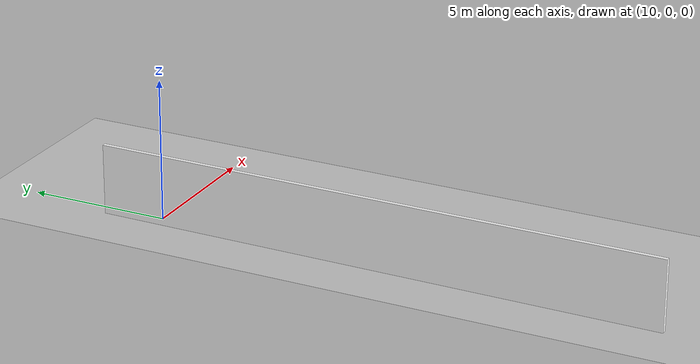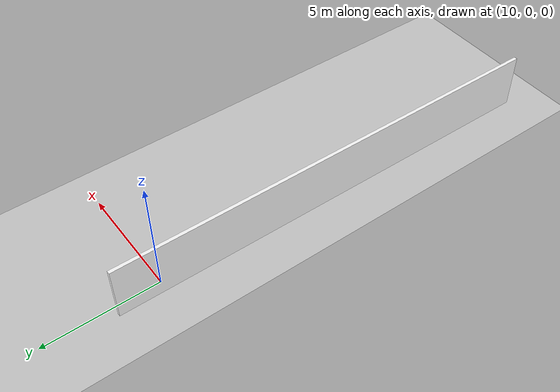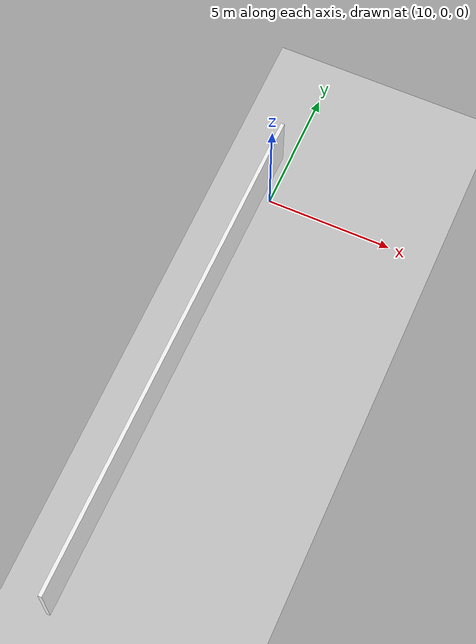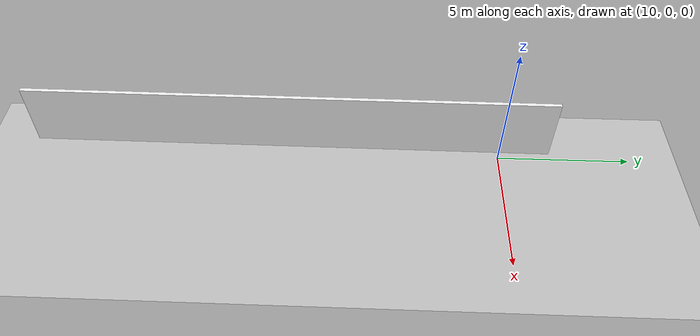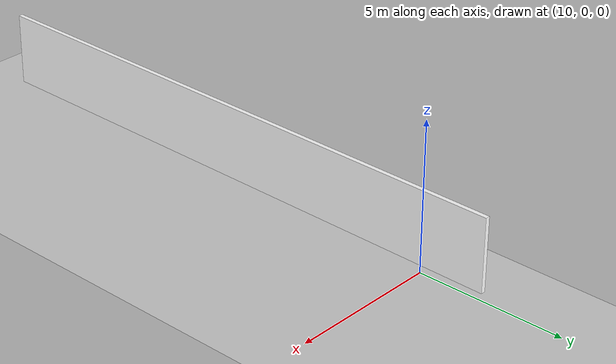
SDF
<sdf version="1.6">
 <world name="default">
  <model name="ground_plane">
   <static>1</static>
   <link name="link">
    <collision name="collision">
     <geometry><plane><normal>0 0 1</normal><size>5000 5000</size></plane></geometry>
     <surface><friction><ode><mu>1</mu><mu2>2</mu2></ode></friction></surface>
    </collision>
    <visual name="runway">
     <cast_shadows>0</cast_shadows>
     <geometry><plane><normal>0 0 1</normal><size>700 700</size></plane></geometry>
     <material>
      <script><uri>file://media/materials/scripts/gazebo.material</uri><name>Gazebo/Gray</name></script>
     </material>
    </visual>
   </link>
  </model>
  <model name="wall_with_door_0">
   <link name="Wall_2">
    <inertial>
     <inertia><ixx>0</ixx><ixy>0</ixy><ixz>0</ixz><iyy>0</iyy><iyz>0</iyz><izz>0</izz></inertia>
     <mass>0</mass>
    </inertial>
    <visual name="Wall_2_Visual_4">
     <pose>2.1425 0 1.25 0 -0 0</pose>
     <geometry><box><size>20.0858 0.15 2.5</size></box></geometry>
     <material>
      <script>
       <uri>model://floor/materials/scripts</uri>
       <uri>model://floor/materials/textures</uri>
       <name>floor</name>
      </script>
      <ambient>1 1 1 1</ambient>
      <shader type="vertex"><normal_map>__default__</normal_map></shader>
     </material>
     <meta><layer>0</layer></meta>
    </visual>
    <collision name="Wall_2_Collision_8">
     <pose>45.239 0 1.25 0 -0 0</pose>
     <geometry><box><size>0.462241 0.15 2.5</size></box></geometry>
     <surface>
      <friction>
       <ode><mu>1</mu><mu2>1</mu2><fdir1>0 0 0</fdir1><slip1>0</slip1><slip2>0</slip2></ode>
       <torsional>
        <coefficient>1</coefficient>
        <patch_radius>0</patch_radius>
        <surface_radius>0</surface_radius>
        <use_patch_radius>1</use_patch_radius>
        <ode><slip>0</slip></ode>
       </torsional>
      </friction>
      <bounce><restitution_coefficient>0</restitution_coefficient><threshold>1e+06</threshold></bounce>
      <contact>
       <collide_without_contact>0</collide_without_contact>
       <collide_without_contact_bitmask>1</collide_without_contact_bitmask>
       <collide_bitmask>1</collide_bitmask>
       <ode>
        <soft_cfm>0</soft_cfm>
        <soft_erp>0.2</soft_erp>
        <kp>1e+13</kp>
        <kd>1</kd>
        <max_vel>0.01</max_vel>
        <min_depth>0</min_depth>
       </ode>
       <bullet>
        <split_impulse>1</split_impulse>
        <split_impulse_penetration_threshold>-0.01</split_impulse_penetration_threshold>
        <soft_cfm>0</soft_cfm>
        <soft_erp>0.2</soft_erp>
        <kp>1e+13</kp>
        <kd>1</kd>
       </bullet>
      </contact>
     </surface>
    </collision>
    <collision name="Wall_2_Collision_9">
     <pose>50.4005 0 1.25 0 -0 0</pose>
     <geometry><box><size>2.68417 0.15 2.5</size></box></geometry>
     <surface>
      <friction>
       <ode><mu>1</mu><mu2>1</mu2><fdir1>0 0 0</fdir1><slip1>0</slip1><slip2>0</slip2></ode>
       <torsional>
        <coefficient>1</coefficient>
        <patch_radius>0</patch_radius>
        <surface_radius>0</surface_radius>
        <use_patch_radius>1</use_patch_radius>
        <ode><slip>0</slip></ode>
       </torsional>
      </friction>
      <bounce><restitution_coefficient>0</restitution_coefficient><threshold>1e+06</threshold></bounce>
      <contact>
       <collide_without_contact>0</collide_without_contact>
       <collide_without_contact_bitmask>1</collide_without_contact_bitmask>
       <collide_bitmask>1</collide_bitmask>
       <ode>
        <soft_cfm>0</soft_cfm>
        <soft_erp>0.2</soft_erp>
        <kp>1e+13</kp>
        <kd>1</kd>
        <max_vel>0.01</max_vel>
        <min_depth>0</min_depth>
       </ode>
       <bullet>
        <split_impulse>1</split_impulse>
        <split_impulse_penetration_threshold>-0.01</split_impulse_penetration_threshold>
        <soft_cfm>0</soft_cfm>
        <soft_erp>0.2</soft_erp>
        <kp>1e+13</kp>
        <kd>1</kd>
       </bullet>
      </contact>
     </surface>
    </collision>
    <collision name="Door_2_Collision_1">
     <pose>-26.352 0 2.25 0 -0 0</pose>
     <geometry><box><size>0.995439 0.15 0.5</size></box></geometry>
     <surface>
      <friction>
       <ode><mu>1</mu><mu2>1</mu2><fdir1>0 0 0</fdir1><slip1>0</slip1><slip2>0</slip2></ode>
       <torsional>
        <coefficient>1</coefficient>
        <patch_radius>0</patch_radius>
        <surface_radius>0</surface_radius>
        <use_patch_radius>1</use_patch_radius>
        <ode><slip>0</slip></ode>
       </torsional>
      </friction>
      <bounce><restitution_coefficient>0</restitution_coefficient><threshold>1e+06</threshold></bounce>
      <contact>
       <collide_without_contact>0</collide_without_contact>
       <collide_without_contact_bitmask>1</collide_without_contact_bitmask>
       <collide_bitmask>1</collide_bitmask>
       <ode>
        <soft_cfm>0</soft_cfm>
        <soft_erp>0.2</soft_erp>
        <kp>1e+13</kp>
        <kd>1</kd>
        <max_vel>0.01</max_vel>
        <min_depth>0</min_depth>
       </ode>
       <bullet>
        <split_impulse>1</split_impulse>
        <split_impulse_penetration_threshold>-0.01</split_impulse_penetration_threshold>
        <soft_cfm>0</soft_cfm>
        <soft_erp>0.2</soft_erp>
        <kp>1e+13</kp>
        <kd>1</kd>
       </bullet>
      </contact>
     </surface>
    </collision>
    <collision name="Door_2_Collision_0">
     <pose>-33.729 0 2.25 0 -0 0</pose>
     <geometry><box><size>0.995439 0.15 0.5</size></box></geometry>
     <surface>
      <friction>
       <ode><mu>1</mu><mu2>1</mu2><fdir1>0 0 0</fdir1><slip1>0</slip1><slip2>0</slip2></ode>
       <torsional>
        <coefficient>1</coefficient>
        <patch_radius>0</patch_radius>
        <surface_radius>0</surface_radius>
        <use_patch_radius>1</use_patch_radius>
        <ode><slip>0</slip></ode>
       </torsional>
      </friction>
      <bounce><restitution_coefficient>0</restitution_coefficient><threshold>1e+06</threshold></bounce>
      <contact>
       <collide_without_contact>0</collide_without_contact>
       <collide_without_contact_bitmask>1</collide_without_contact_bitmask>
       <collide_bitmask>1</collide_bitmask>
       <ode>
        <soft_cfm>0</soft_cfm>
        <soft_erp>0.2</soft_erp>
        <kp>1e+13</kp>
        <kd>1</kd>
        <max_vel>0.01</max_vel>
        <min_depth>0</min_depth>
       </ode>
       <bullet>
        <split_impulse>1</split_impulse>
        <split_impulse_penetration_threshold>-0.01</split_impulse_penetration_threshold>
        <soft_cfm>0</soft_cfm>
        <soft_erp>0.2</soft_erp>
        <kp>1e+13</kp>
        <kd>1</kd>
       </bullet>
      </contact>
     </surface>
    </collision>
    <collision name="Door_2_Collision_2">
     <pose>-22.592 0 2.25 0 -0 0</pose>
     <geometry><box><size>0.995439 0.15 0.5</size></box></geometry>
     <surface>
      <friction>
       <ode><mu>1</mu><mu2>1</mu2><fdir1>0 0 0</fdir1><slip1>0</slip1><slip2>0</slip2></ode>
       <torsional>
        <coefficient>1</coefficient>
        <patch_radius>0</patch_radius>
        <surface_radius>0</surface_radius>
        <use_patch_radius>1</use_patch_radius>
        <ode><slip>0</slip></ode>
       </torsional>
      </friction>
      <bounce><restitution_coefficient>0</restitution_coefficient><threshold>1e+06</threshold></bounce>
      <contact>
       <collide_without_contact>0</collide_without_contact>
       <collide_without_contact_bitmask>1</collide_without_contact_bitmask>
       <collide_bitmask>1</collide_bitmask>
       <ode>
        <soft_cfm>0</soft_cfm>
        <soft_erp>0.2</soft_erp>
        <kp>1e+13</kp>
        <kd>1</kd>
        <max_vel>0.01</max_vel>
        <min_depth>0</min_depth>
       </ode>
       <bullet>
        <split_impulse>1</split_impulse>
        <split_impulse_penetration_threshold>-0.01</split_impulse_penetration_threshold>
        <soft_cfm>0</soft_cfm>
        <soft_erp>0.2</soft_erp>
        <kp>1e+13</kp>
        <kd>1</kd>
       </bullet>
      </contact>
     </surface>
    </collision>
    <collision name="Door_2_Collision_3">
     <pose>-19.043 0 2.25 0 -0 0</pose>
     <geometry><box><size>0.995439 0.15 0.5</size></box></geometry>
     <surface>
      <friction>
       <ode><mu>1</mu><mu2>1</mu2><fdir1>0 0 0</fdir1><slip1>0</slip1><slip2>0</slip2></ode>
       <torsional>
        <coefficient>1</coefficient>
        <patch_radius>0</patch_radius>
        <surface_radius>0</surface_radius>
        <use_patch_radius>1</use_patch_radius>
        <ode><slip>0</slip></ode>
       </torsional>
      </friction>
      <bounce><restitution_coefficient>0</restitution_coefficient><threshold>1e+06</threshold></bounce>
      <contact>
       <collide_without_contact>0</collide_without_contact>
       <collide_without_contact_bitmask>1</collide_without_contact_bitmask>
       <collide_bitmask>1</collide_bitmask>
       <ode>
        <soft_cfm>0</soft_cfm>
        <soft_erp>0.2</soft_erp>
        <kp>1e+13</kp>
        <kd>1</kd>
        <max_vel>0.01</max_vel>
        <min_depth>0</min_depth>
       </ode>
       <bullet>
        <split_impulse>1</split_impulse>
        <split_impulse_penetration_threshold>-0.01</split_impulse_penetration_threshold>
        <soft_cfm>0</soft_cfm>
        <soft_erp>0.2</soft_erp>
        <kp>1e+13</kp>
        <kd>1</kd>
       </bullet>
      </contact>
     </surface>
    </collision>
    <collision name="Door_2_Collision_4">
     <pose>23.328 0 2.25 0 -0 0</pose>
     <geometry><box><size>0.995439 0.15 0.5</size></box></geometry>
     <surface>
      <friction>
       <ode><mu>1</mu><mu2>1</mu2><fdir1>0 0 0</fdir1><slip1>0</slip1><slip2>0</slip2></ode>
       <torsional>
        <coefficient>1</coefficient>
        <patch_radius>0</patch_radius>
        <surface_radius>0</surface_radius>
        <use_patch_radius>1</use_patch_radius>
        <ode><slip>0</slip></ode>
       </torsional>
      </friction>
      <bounce><restitution_coefficient>0</restitution_coefficient><threshold>1e+06</threshold></bounce>
      <contact>
       <collide_without_contact>0</collide_without_contact>
       <collide_without_contact_bitmask>1</collide_without_contact_bitmask>
       <collide_bitmask>1</collide_bitmask>
       <ode>
        <soft_cfm>0</soft_cfm>
        <soft_erp>0.2</soft_erp>
        <kp>1e+13</kp>
        <kd>1</kd>
        <max_vel>0.01</max_vel>
        <min_depth>0</min_depth>
       </ode>
       <bullet>
        <split_impulse>1</split_impulse>
        <split_impulse_penetration_threshold>-0.01</split_impulse_penetration_threshold>
        <soft_cfm>0</soft_cfm>
        <soft_erp>0.2</soft_erp>
        <kp>1e+13</kp>
        <kd>1</kd>
       </bullet>
      </contact>
     </surface>
    </collision>
    <collision name="Wall_2_Collision_4">
     <pose>2.1425 0 1.25 0 -0 0</pose>
     <geometry><box><size>20.0858 0.15 2.5</size></box></geometry>
     <surface>
      <friction>
       <ode><mu>1</mu><mu2>1</mu2><fdir1>0 0 0</fdir1><slip1>0</slip1><slip2>0</slip2></ode>
       <torsional>
        <coefficient>1</coefficient>
        <patch_radius>0</patch_radius>
        <surface_radius>0</surface_radius>
        <use_patch_radius>1</use_patch_radius>
        <ode><slip>0</slip></ode>
       </torsional>
      </friction>
      <bounce><restitution_coefficient>0</restitution_coefficient><threshold>1e+06</threshold></bounce>
      <contact>
       <collide_without_contact>0</collide_without_contact>
       <collide_without_contact_bitmask>1</collide_without_contact_bitmask>
       <collide_bitmask>1</collide_bitmask>
       <ode>
        <soft_cfm>0</soft_cfm>
        <soft_erp>0.2</soft_erp>
        <kp>1e+13</kp>
        <kd>1</kd>
        <max_vel>0.01</max_vel>
        <min_depth>0</min_depth>
       </ode>
       <bullet>
        <split_impulse>1</split_impulse>
        <split_impulse_penetration_threshold>-0.01</split_impulse_penetration_threshold>
        <soft_cfm>0</soft_cfm>
        <soft_erp>0.2</soft_erp>
        <kp>1e+13</kp>
        <kd>1</kd>
       </bullet>
      </contact>
     </surface>
    </collision>
    <collision name="Wall_2_Collision_5">
     <pose>26.519 0 1.25 0 -0 0</pose>
     <geometry><box><size>2.18101 0.15 2.5</size></box></geometry>
     <surface>
      <friction>
       <ode><mu>1</mu><mu2>1</mu2><fdir1>0 0 0</fdir1><slip1>0</slip1><slip2>0</slip2></ode>
       <torsional>
        <coefficient>1</coefficient>
        <patch_radius>0</patch_radius>
        <surface_radius>0</surface_radius>
        <use_patch_radius>1</use_patch_radius>
        <ode><slip>0</slip></ode>
       </torsional>
      </friction>
      <bounce><restitution_coefficient>0</restitution_coefficient><threshold>1e+06</threshold></bounce>
      <contact>
       <collide_without_contact>0</collide_without_contact>
       <collide_without_contact_bitmask>1</collide_without_contact_bitmask>
       <collide_bitmask>1</collide_bitmask>
       <ode>
        <soft_cfm>0</soft_cfm>
        <soft_erp>0.2</soft_erp>
        <kp>1e+13</kp>
        <kd>1</kd>
        <max_vel>0.01</max_vel>
        <min_depth>0</min_depth>
       </ode>
       <bullet>
        <split_impulse>1</split_impulse>
        <split_impulse_penetration_threshold>-0.01</split_impulse_penetration_threshold>
        <soft_cfm>0</soft_cfm>
        <soft_erp>0.2</soft_erp>
        <kp>1e+13</kp>
        <kd>1</kd>
       </bullet>
      </contact>
     </surface>
    </collision>
    <collision name="Wall_2_Collision_6">
     <pose>35.369 0 1.25 0 -0 0</pose>
     <geometry><box><size>4.63597 0.15 2.5</size></box></geometry>
     <surface>
      <friction>
       <ode><mu>1</mu><mu2>1</mu2><fdir1>0 0 0</fdir1><slip1>0</slip1><slip2>0</slip2></ode>
       <torsional>
        <coefficient>1</coefficient>
        <patch_radius>0</patch_radius>
        <surface_radius>0</surface_radius>
        <use_patch_radius>1</use_patch_radius>
        <ode><slip>0</slip></ode>
       </torsional>
      </friction>
      <bounce><restitution_coefficient>0</restitution_coefficient><threshold>1e+06</threshold></bounce>
      <contact>
       <collide_without_contact>0</collide_without_contact>
       <collide_without_contact_bitmask>1</collide_without_contact_bitmask>
       <collide_bitmask>1</collide_bitmask>
       <ode>
        <soft_cfm>0</soft_cfm>
        <soft_erp>0.2</soft_erp>
        <kp>1e+13</kp>
        <kd>1</kd>
        <max_vel>0.01</max_vel>
        <min_depth>0</min_depth>
       </ode>
       <bullet>
        <split_impulse>1</split_impulse>
        <split_impulse_penetration_threshold>-0.01</split_impulse_penetration_threshold>
        <soft_cfm>0</soft_cfm>
        <soft_erp>0.2</soft_erp>
        <kp>1e+13</kp>
        <kd>1</kd>
       </bullet>
      </contact>
     </surface>
    </collision>
    <collision name="Wall_2_Collision_7">
     <pose>42.4015 0 1.25 0 -0 0</pose>
     <geometry><box><size>0.372084 0.15 2.5</size></box></geometry>
     <surface>
      <friction>
       <ode><mu>1</mu><mu2>1</mu2><fdir1>0 0 0</fdir1><slip1>0</slip1><slip2>0</slip2></ode>
       <torsional>
        <coefficient>1</coefficient>
        <patch_radius>0</patch_radius>
        <surface_radius>0</surface_radius>
        <use_patch_radius>1</use_patch_radius>
        <ode><slip>0</slip></ode>
       </torsional>
      </friction>
      <bounce><restitution_coefficient>0</restitution_coefficient><threshold>1e+06</threshold></bounce>
      <contact>
       <collide_without_contact>0</collide_without_contact>
       <collide_without_contact_bitmask>1</collide_without_contact_bitmask>
       <collide_bitmask>1</collide_bitmask>
       <ode>
        <soft_cfm>0</soft_cfm>
        <soft_erp>0.2</soft_erp>
        <kp>1e+13</kp>
        <kd>1</kd>
        <max_vel>0.01</max_vel>
        <min_depth>0</min_depth>
       </ode>
       <bullet>
        <split_impulse>1</split_impulse>
        <split_impulse_penetration_threshold>-0.01</split_impulse_penetration_threshold>
        <soft_cfm>0</soft_cfm>
        <soft_erp>0.2</soft_erp>
        <kp>1e+13</kp>
        <kd>1</kd>
       </bullet>
      </contact>
     </surface>
    </collision>
    <collision name="Wall_2_Collision_0">
     <pose>-42.3645 0 1.25 0 -0 0</pose>
     <geometry><box><size>7.59777 0.15 2.5</size></box></geometry>
     <surface>
      <friction>
       <ode><mu>1</mu><mu2>1</mu2><fdir1>0 0 0</fdir1><slip1>0</slip1><slip2>0</slip2></ode>
       <torsional>
        <coefficient>1</coefficient>
        <patch_radius>0</patch_radius>
        <surface_radius>0</surface_radius>
        <use_patch_radius>1</use_patch_radius>
        <ode><slip>0</slip></ode>
       </torsional>
      </friction>
      <bounce><restitution_coefficient>0</restitution_coefficient><threshold>1e+06</threshold></bounce>
      <contact>
       <collide_without_contact>0</collide_without_contact>
       <collide_without_contact_bitmask>1</collide_without_contact_bitmask>
       <collide_bitmask>1</collide_bitmask>
       <ode>
        <soft_cfm>0</soft_cfm>
        <soft_erp>0.2</soft_erp>
        <kp>1e+13</kp>
        <kd>1</kd>
        <max_vel>0.01</max_vel>
        <min_depth>0</min_depth>
       </ode>
       <bullet>
        <split_impulse>1</split_impulse>
        <split_impulse_penetration_threshold>-0.01</split_impulse_penetration_threshold>
        <soft_cfm>0</soft_cfm>
        <soft_erp>0.2</soft_erp>
        <kp>1e+13</kp>
        <kd>1</kd>
       </bullet>
      </contact>
     </surface>
    </collision>
    <collision name="Wall_2_Collision_1">
     <pose>-30.0405 0 1.25 0 -0 0</pose>
     <geometry><box><size>2.67522 0.15 2.5</size></box></geometry>
     <surface>
      <friction>
       <ode><mu>1</mu><mu2>1</mu2><fdir1>0 0 0</fdir1><slip1>0</slip1><slip2>0</slip2></ode>
       <torsional>
        <coefficient>1</coefficient>
        <patch_radius>0</patch_radius>
        <surface_radius>0</surface_radius>
        <use_patch_radius>1</use_patch_radius>
        <ode><slip>0</slip></ode>
       </torsional>
      </friction>
      <bounce><restitution_coefficient>0</restitution_coefficient><threshold>1e+06</threshold></bounce>
      <contact>
       <collide_without_contact>0</collide_without_contact>
       <collide_without_contact_bitmask>1</collide_without_contact_bitmask>
       <collide_bitmask>1</collide_bitmask>
       <ode>
        <soft_cfm>0</soft_cfm>
        <soft_erp>0.2</soft_erp>
        <kp>1e+13</kp>
        <kd>1</kd>
        <max_vel>0.01</max_vel>
        <min_depth>0</min_depth>
       </ode>
       <bullet>
        <split_impulse>1</split_impulse>
        <split_impulse_penetration_threshold>-0.01</split_impulse_penetration_threshold>
        <soft_cfm>0</soft_cfm>
        <soft_erp>0.2</soft_erp>
        <kp>1e+13</kp>
        <kd>1</kd>
       </bullet>
      </contact>
     </surface>
    </collision>
    <collision name="Wall_2_Collision_3">
     <pose>-20.8175 0 1.25 0 -0 0</pose>
     <geometry><box><size>0.771564 0.15 2.5</size></box></geometry>
     <surface>
      <friction>
       <ode><mu>1</mu><mu2>1</mu2><fdir1>0 0 0</fdir1><slip1>0</slip1><slip2>0</slip2></ode>
       <torsional>
        <coefficient>1</coefficient>
        <patch_radius>0</patch_radius>
        <surface_radius>0</surface_radius>
        <use_patch_radius>1</use_patch_radius>
        <ode><slip>0</slip></ode>
       </torsional>
      </friction>
      <bounce><restitution_coefficient>0</restitution_coefficient><threshold>1e+06</threshold></bounce>
      <contact>
       <collide_without_contact>0</collide_without_contact>
       <collide_without_contact_bitmask>1</collide_without_contact_bitmask>
       <collide_bitmask>1</collide_bitmask>
       <ode>
        <soft_cfm>0</soft_cfm>
        <soft_erp>0.2</soft_erp>
        <kp>1e+13</kp>
        <kd>1</kd>
        <max_vel>0.01</max_vel>
        <min_depth>0</min_depth>
       </ode>
       <bullet>
        <split_impulse>1</split_impulse>
        <split_impulse_penetration_threshold>-0.01</split_impulse_penetration_threshold>
        <soft_cfm>0</soft_cfm>
        <soft_erp>0.2</soft_erp>
        <kp>1e+13</kp>
        <kd>1</kd>
       </bullet>
      </contact>
     </surface>
    </collision>
    <collision name="Wall_2_Collision_2">
     <pose>-24.472 0 1.25 0 -0 0</pose>
     <geometry><box><size>0.876664 0.15 2.5</size></box></geometry>
     <surface>
      <friction>
       <ode><mu>1</mu><mu2>1</mu2><fdir1>0 0 0</fdir1><slip1>0</slip1><slip2>0</slip2></ode>
       <torsional>
        <coefficient>1</coefficient>
        <patch_radius>0</patch_radius>
        <surface_radius>0</surface_radius>
        <use_patch_radius>1</use_patch_radius>
        <ode><slip>0</slip></ode>
       </torsional>
      </friction>
      <bounce><restitution_coefficient>0</restitution_coefficient><threshold>1e+06</threshold></bounce>
      <contact>
       <collide_without_contact>0</collide_without_contact>
       <collide_without_contact_bitmask>1</collide_without_contact_bitmask>
       <collide_bitmask>1</collide_bitmask>
       <ode>
        <soft_cfm>0</soft_cfm>
        <soft_erp>0.2</soft_erp>
        <kp>1e+13</kp>
        <kd>1</kd>
        <max_vel>0.01</max_vel>
        <min_depth>0</min_depth>
       </ode>
       <bullet>
        <split_impulse>1</split_impulse>
        <split_impulse_penetration_threshold>-0.01</split_impulse_penetration_threshold>
        <soft_cfm>0</soft_cfm>
        <soft_erp>0.2</soft_erp>
        <kp>1e+13</kp>
        <kd>1</kd>
       </bullet>
      </contact>
     </surface>
    </collision>
    <collision name="Door_2_Collision_5">
     <pose>29.71 0 2.25 0 -0 0</pose>
     <geometry><box><size>0.995439 0.15 0.5</size></box></geometry>
     <surface>
      <friction>
       <ode><mu>1</mu><mu2>1</mu2><fdir1>0 0 0</fdir1><slip1>0</slip1><slip2>0</slip2></ode>
       <torsional>
        <coefficient>1</coefficient>
        <patch_radius>0</patch_radius>
        <surface_radius>0</surface_radius>
        <use_patch_radius>1</use_patch_radius>
        <ode><slip>0</slip></ode>
       </torsional>
      </friction>
      <bounce><restitution_coefficient>0</restitution_coefficient><threshold>1e+06</threshold></bounce>
      <contact>
       <collide_without_contact>0</collide_without_contact>
       <collide_without_contact_bitmask>1</collide_without_contact_bitmask>
       <collide_bitmask>1</collide_bitmask>
       <ode>
        <soft_cfm>0</soft_cfm>
        <soft_erp>0.2</soft_erp>
        <kp>1e+13</kp>
        <kd>1</kd>
        <max_vel>0.01</max_vel>
        <min_depth>0</min_depth>
       </ode>
       <bullet>
        <split_impulse>1</split_impulse>
        <split_impulse_penetration_threshold>-0.01</split_impulse_penetration_threshold>
        <soft_cfm>0</soft_cfm>
        <soft_erp>0.2</soft_erp>
        <kp>1e+13</kp>
        <kd>1</kd>
       </bullet>
      </contact>
     </surface>
    </collision>
    <collision name="Door_2_Collision_6">
     <pose>41.028 0 2.25 0 -0 0</pose>
     <geometry><box><size>0.995439 0.15 0.5</size></box></geometry>
     <surface>
      <friction>
       <ode><mu>1</mu><mu2>1</mu2><fdir1>0 0 0</fdir1><slip1>0</slip1><slip2>0</slip2></ode>
       <torsional>
        <coefficient>1</coefficient>
        <patch_radius>0</patch_radius>
        <surface_radius>0</surface_radius>
        <use_patch_radius>1</use_patch_radius>
        <ode><slip>0</slip></ode>
       </torsional>
      </friction>
      <bounce><restitution_coefficient>0</restitution_coefficient><threshold>1e+06</threshold></bounce>
      <contact>
       <collide_without_contact>0</collide_without_contact>
       <collide_without_contact_bitmask>1</collide_without_contact_bitmask>
       <collide_bitmask>1</collide_bitmask>
       <ode>
        <soft_cfm>0</soft_cfm>
        <soft_erp>0.2</soft_erp>
        <kp>1e+13</kp>
        <kd>1</kd>
        <max_vel>0.01</max_vel>
        <min_depth>0</min_depth>
       </ode>
       <bullet>
        <split_impulse>1</split_impulse>
        <split_impulse_penetration_threshold>-0.01</split_impulse_penetration_threshold>
        <soft_cfm>0</soft_cfm>
        <soft_erp>0.2</soft_erp>
        <kp>1e+13</kp>
        <kd>1</kd>
       </bullet>
      </contact>
     </surface>
    </collision>
    <collision name="Door_2_Collision_8">
     <pose>46.703 0 2.25 0 -0 0</pose>
     <geometry><box><size>0.995439 0.15 0.5</size></box></geometry>
     <surface>
      <friction>
       <ode><mu>1</mu><mu2>1</mu2><fdir1>0 0 0</fdir1><slip1>0</slip1><slip2>0</slip2></ode>
       <torsional>
        <coefficient>1</coefficient>
        <patch_radius>0</patch_radius>
        <surface_radius>0</surface_radius>
        <use_patch_radius>1</use_patch_radius>
        <ode><slip>0</slip></ode>
       </torsional>
      </friction>
      <bounce><restitution_coefficient>0</restitution_coefficient><threshold>1e+06</threshold></bounce>
      <contact>
       <collide_without_contact>0</collide_without_contact>
       <collide_without_contact_bitmask>1</collide_without_contact_bitmask>
       <collide_bitmask>1</collide_bitmask>
       <ode>
        <soft_cfm>0</soft_cfm>
        <soft_erp>0.2</soft_erp>
        <kp>1e+13</kp>
        <kd>1</kd>
        <max_vel>0.01</max_vel>
        <min_depth>0</min_depth>
       </ode>
       <bullet>
        <split_impulse>1</split_impulse>
        <split_impulse_penetration_threshold>-0.01</split_impulse_penetration_threshold>
        <soft_cfm>0</soft_cfm>
        <soft_erp>0.2</soft_erp>
        <kp>1e+13</kp>
        <kd>1</kd>
       </bullet>
      </contact>
     </surface>
    </collision>
    <collision name="Door_2_Collision_7">
     <pose>43.775 0 2.25 0 -0 0</pose>
     <geometry><box><size>0.995439 0.15 0.5</size></box></geometry>
     <surface>
      <friction>
       <ode><mu>1</mu><mu2>1</mu2><fdir1>0 0 0</fdir1><slip1>0</slip1><slip2>0</slip2></ode>
       <torsional>
        <coefficient>1</coefficient>
        <patch_radius>0</patch_radius>
        <surface_radius>0</surface_radius>
        <use_patch_radius>1</use_patch_radius>
        <ode><slip>0</slip></ode>
       </torsional>
      </friction>
      <bounce><restitution_coefficient>0</restitution_coefficient><threshold>1e+06</threshold></bounce>
      <contact>
       <collide_without_contact>0</collide_without_contact>
       <collide_without_contact_bitmask>1</collide_without_contact_bitmask>
       <collide_bitmask>1</collide_bitmask>
       <ode>
        <soft_cfm>0</soft_cfm>
        <soft_erp>0.2</soft_erp>
        <kp>1e+13</kp>
        <kd>1</kd>
        <max_vel>0.01</max_vel>
        <min_depth>0</min_depth>
       </ode>
       <bullet>
        <split_impulse>1</split_impulse>
        <split_impulse_penetration_threshold>-0.01</split_impulse_penetration_threshold>
        <soft_cfm>0</soft_cfm>
        <soft_erp>0.2</soft_erp>
        <kp>1e+13</kp>
        <kd>1</kd>
       </bullet>
      </contact>
     </surface>
    </collision>
   </link>
   <static>1</static>
   <pose>9.5837 -5.89513 0 0 0 -1.57544</pose>
  </model>
 </world>
</sdf>
